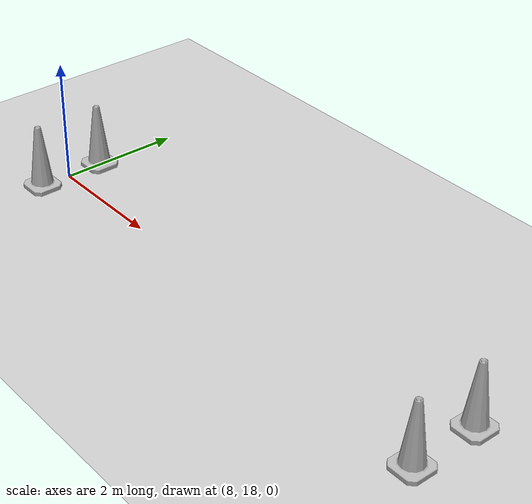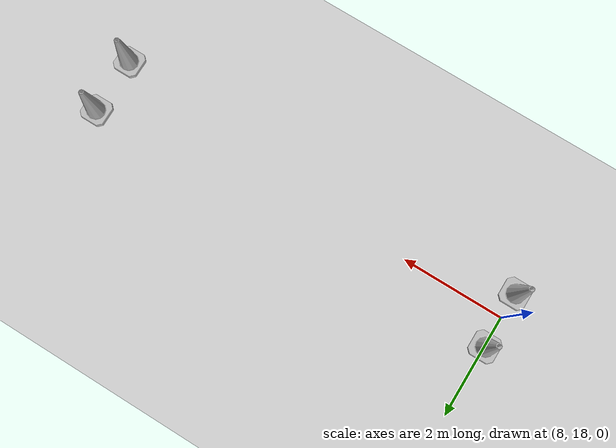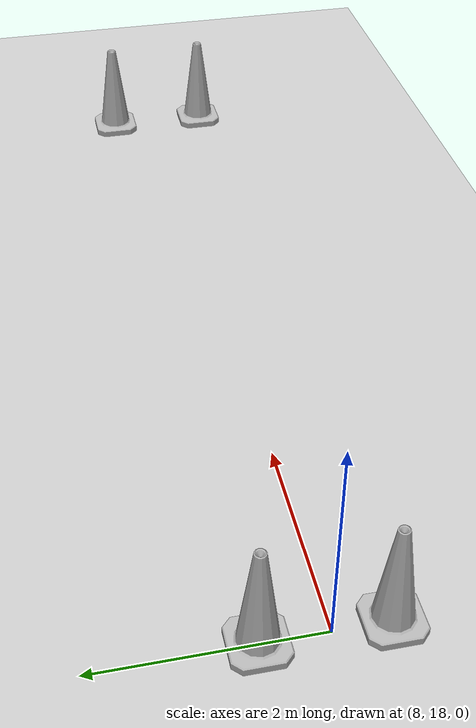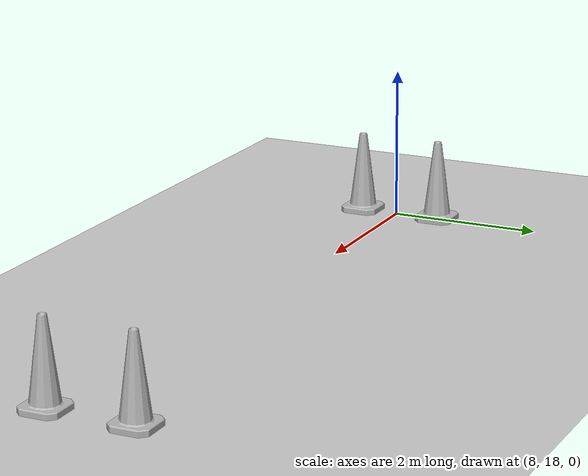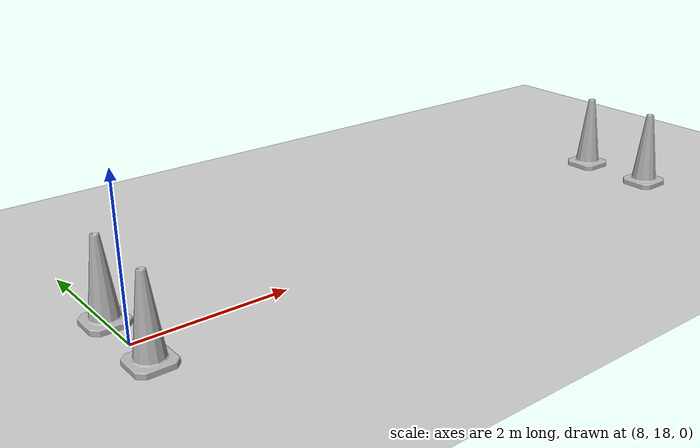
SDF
<sdf version="1.4">
 <world name="default">
  <light name="sun" type="directional">
   <pose>0 0 10 0 -0 0</pose>
   <diffuse>0.8 0.8 0.8 1</diffuse>
   <specular>0.2 0.2 0.2 1</specular>
   <attenuation>
    <range>1000</range>
    <constant>0.9</constant>
    <linear>0.01</linear>
    <quadratic>0.001</quadratic>
   </attenuation>
   <direction>-0.5 0.1 -0.9</direction>
  </light>
  <model name="ground_plane">
   <static>1</static>
   <link name="link">
    <collision name="collision">
     <geometry><plane><normal>0 0 1</normal><size>100 100</size></plane></geometry>
     <surface><friction><ode><mu>100</mu><mu2>50</mu2></ode></friction></surface>
    </collision>
    <visual name="visual">
     <cast_shadows>0</cast_shadows>
     <geometry><plane><normal>0 0 1</normal><size>100 100</size></plane></geometry>
     <material>
      <script><uri>file://media/materials/scripts/gazebo.material</uri><name>Gazebo/Grey</name></script>
     </material>
    </visual>
    <velocity_decay><linear>0</linear><angular>0</angular></velocity_decay>
   </link>
  </model>
  <model name="Construction Cone1">
   <static>1</static>
   <link name="link">
    <collision name="collision">
     <geometry>
      <mesh><scale>10 10 10</scale><uri>model://construction_cone/meshes/construction_cone.dae</uri></mesh>
     </geometry>
    </collision>
    <visual name="visual">
     <geometry>
      <mesh><scale>10 10 10</scale><uri>model://construction_cone/meshes/construction_cone.dae</uri></mesh>
     </geometry>
    </visual>
   </link>
   <pose>16.25 18.60 0 0 -0 0</pose>
  </model>
  <model name="Construction Cone2">
   <static>1</static>
   <link name="link">
    <collision name="collision">
     <geometry>
      <mesh><scale>10 10 10</scale><uri>model://construction_cone/meshes/construction_cone.dae</uri></mesh>
     </geometry>
    </collision>
    <visual name="visual">
     <geometry>
      <mesh><scale>10 10 10</scale><uri>model://construction_cone/meshes/construction_cone.dae</uri></mesh>
     </geometry>
    </visual>
   </link>
   <pose>8 18.60 0 0 -0 0</pose>
  </model>
  <model name="Construction Cone3">
   <static>1</static>
   <link name="link">
    <collision name="collision">
     <geometry>
      <mesh><scale>10 10 10</scale><uri>model://construction_cone/meshes/construction_cone.dae</uri></mesh>
     </geometry>
    </collision>
    <visual name="visual">
     <geometry>
      <mesh><scale>10 10 10</scale><uri>model://construction_cone/meshes/construction_cone.dae</uri></mesh>
     </geometry>
    </visual>
   </link>
   <pose>16.25 17.5 0 0 -0 0</pose>
  </model>
  <model name="Construction Cone1">
   <static>1</static>
   <link name="link">
    <collision name="collision">
     <geometry>
      <mesh><scale>10 10 10</scale><uri>model://construction_cone/meshes/construction_cone.dae</uri></mesh>
     </geometry>
    </collision>
    <visual name="visual">
     <geometry>
      <mesh><scale>10 10 10</scale><uri>model://construction_cone/meshes/construction_cone.dae</uri></mesh>
     </geometry>
    </visual>
   </link>
   <pose>8 17.5 0 0 -0 0</pose>
  </model>
  <physics type="ode">
   <max_step_size>0.001</max_step_size>
   <real_time_factor>1</real_time_factor>
   <real_time_update_rate>1000</real_time_update_rate>
   <gravity>0 0 -9.8</gravity>
  </physics>
  <scene><ambient>0.4 0.4 0.4 1</ambient><background>0.7 0.7 0.7 1</background><shadows>1</shadows></scene>
  <spherical_coordinates>
   <surface_model>EARTH_WGS84</surface_model>
   <latitude_deg>0</latitude_deg>
   <longitude_deg>0</longitude_deg>
   <elevation>0</elevation>
   <heading_deg>0</heading_deg>
  </spherical_coordinates>
 </world>
</sdf>
